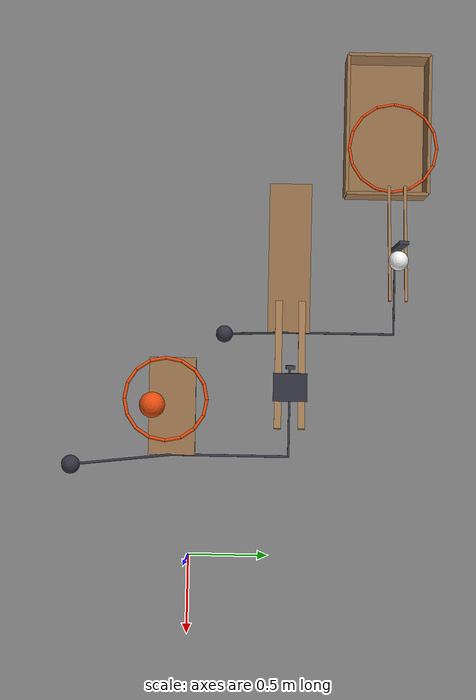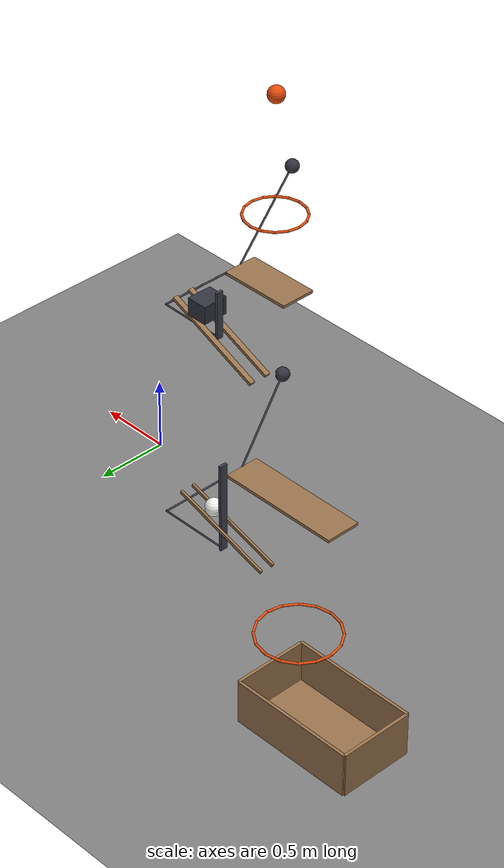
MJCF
<mujoco model="two_falling_balls_and_two_trapdoors">
  <compiler angle="radian"/>
  <option timestep="0.002"/>
  <worldbody>
    <geom name="floor" type="plane" size="8 8 0.1" friction="0.8 0.01 0.004"/>
    <body name="hoop1">
      <geom name="hoop1_00" type="capsule" size="0.008" fromto="-0.852 0 2.25 -0.867072 0.0757713 2.25" rgba="0.9 0.3 0.05 1"/>
      <geom name="hoop1_01" type="capsule" size="0.008" fromto="-0.867072 0.0757713 2.25 -0.909993 0.140007 2.25" rgba="0.9 0.3 0.05 1"/>
      <geom name="hoop1_02" type="capsule" size="0.008" fromto="-0.909993 0.140007 2.25 -0.974229 0.182928 2.25" rgba="0.9 0.3 0.05 1"/>
      <geom name="hoop1_03" type="capsule" size="0.008" fromto="-0.974229 0.182928 2.25 -1.05 0.198 2.25" rgba="0.9 0.3 0.05 1"/>
      <geom name="hoop1_04" type="capsule" size="0.008" fromto="-1.05 0.198 2.25 -1.12577 0.182928 2.25" rgba="0.9 0.3 0.05 1"/>
      <geom name="hoop1_05" type="capsule" size="0.008" fromto="-1.12577 0.182928 2.25 -1.19001 0.140007 2.25" rgba="0.9 0.3 0.05 1"/>
      <geom name="hoop1_06" type="capsule" size="0.008" fromto="-1.19001 0.140007 2.25 -1.23293 0.0757713 2.25" rgba="0.9 0.3 0.05 1"/>
      <geom name="hoop1_07" type="capsule" size="0.008" fromto="-1.23293 0.0757713 2.25 -1.248 2.4248e-17 2.25" rgba="0.9 0.3 0.05 1"/>
      <geom name="hoop1_08" type="capsule" size="0.008" fromto="-1.248 2.4248e-17 2.25 -1.23293 -0.0757713 2.25" rgba="0.9 0.3 0.05 1"/>
      <geom name="hoop1_09" type="capsule" size="0.008" fromto="-1.23293 -0.0757713 2.25 -1.19001 -0.140007 2.25" rgba="0.9 0.3 0.05 1"/>
      <geom name="hoop1_10" type="capsule" size="0.008" fromto="-1.19001 -0.140007 2.25 -1.12577 -0.182928 2.25" rgba="0.9 0.3 0.05 1"/>
      <geom name="hoop1_11" type="capsule" size="0.008" fromto="-1.12577 -0.182928 2.25 -1.05 -0.198 2.25" rgba="0.9 0.3 0.05 1"/>
      <geom name="hoop1_12" type="capsule" size="0.008" fromto="-1.05 -0.198 2.25 -0.974229 -0.182928 2.25" rgba="0.9 0.3 0.05 1"/>
      <geom name="hoop1_13" type="capsule" size="0.008" fromto="-0.974229 -0.182928 2.25 -0.909993 -0.140007 2.25" rgba="0.9 0.3 0.05 1"/>
      <geom name="hoop1_14" type="capsule" size="0.008" fromto="-0.909993 -0.140007 2.25 -0.867072 -0.0757713 2.25" rgba="0.9 0.3 0.05 1"/>
      <geom name="hoop1_15" type="capsule" size="0.008" fromto="-0.867072 -0.0757713 2.25 -0.852 -4.8496e-17 2.25" rgba="0.9 0.3 0.05 1"/>
    </body>
    <body name="ball1" pos="-1.05 0 3.05">
      <freejoint/>
      <geom name="ball1" type="sphere" pos="0 0 0" size="0.055" mass="1" condim="6" friction="0.5 0.01 0.003" solref="0.01 1" rgba="0.9 0.3 0.05 1"/>
    </body>
    <body name="flap1" pos="-0.75 0 1.75">
      <joint name="flap1_hinge" type="hinge" pos="0 0 0" axis="0 1 0" limited="true" range="-0.698132 0" stiffness="3" springref="0.261799" damping="0.05" armature="0.002"/>
      <geom name="flap1" type="box" pos="-0.25 0 0" size="0.25 0.12 0.01" mass="0.18" friction="0.5 0.005 0.0001" solref="0.01 1" rgba="0.6 0.45 0.3 1"/>
      <geom name="flap1 ballast" type="sphere" pos="0.02 -0.45 0.5" size="0.045" mass="1.1" solref="0.01 1" rgba="0.2 0.2 0.25 1"/>
      <geom name="flap1 mast" type="capsule" size="0.006" fromto="0 0 0 0.02 -0.45 0.5" mass="0.015" rgba="0.25 0.25 0.3 1"/>
      <geom name="flap1 shaft" type="capsule" size="0.006" fromto="0 0 0 0 0.6 0" mass="0.01" rgba="0.25 0.25 0.3 1"/>
      <geom name="gate1" type="box" pos="-0.46 0.6 0.15" size="0.009 0.0225 0.16" mass="0.05" friction="0.05 0.005 0.0001" solref="0.01 1" rgba="0.25 0.25 0.3 1"/>
      <geom name="flap1 gate arm" type="capsule" size="0.005" fromto="0 0.6 0 -0.46 0.6 -0.01" mass="0.01" rgba="0.25 0.25 0.3 1"/>
    </body>
    <body name="block rail left">
      <geom name="block rail left" type="box" pos="-1.225 0.66 1.76" size="0.353871 0.0175 0.01" euler="0 2.73485 0" friction="0.2 0.005 0.0001" solref="0.01 1" rgba="0.6 0.45 0.3 1"/>
    </body>
    <body name="block rail right">
      <geom name="block rail right" type="box" pos="-1.225 0.54 1.76" size="0.353871 0.0175 0.01" euler="0 2.73485 0" friction="0.2 0.005 0.0001" solref="0.01 1" rgba="0.6 0.45 0.3 1"/>
    </body>
    <body name="block" pos="-1.11 0.6 1.916">
      <freejoint/>
      <geom name="block" type="box" pos="0 0 0" size="0.07 0.085 0.06" mass="0.35" friction="0.25 0.01 0.002" solref="0.01 1" rgba="0.2 0.2 0.25 1"/>
    </body>
    <body name="flap2" pos="-1.4 0.6 0.9">
      <joint name="flap2_hinge" type="hinge" pos="0 0 0" axis="0 1 0" limited="true" range="-0.837758 0" stiffness="3.6" springref="0.261799" damping="0.05" armature="0.002"/>
      <geom name="flap2" type="box" pos="-0.425 0 0" size="0.425 0.12 0.01" mass="0.2" friction="0.5 0.005 0.0001" solref="0.01 1" rgba="0.6 0.45 0.3 1"/>
      <geom name="flap2 ballast" type="sphere" pos="0.02 -0.35 0.5" size="0.045" mass="1.3" solref="0.01 1" rgba="0.2 0.2 0.25 1"/>
      <geom name="flap2 mast" type="capsule" size="0.006" fromto="0 0 0 0.02 -0.35 0.5" mass="0.015" rgba="0.25 0.25 0.3 1"/>
      <geom name="flap2 shaft" type="capsule" size="0.006" fromto="0 0 0 0 0.6 0" mass="0.01" rgba="0.25 0.25 0.3 1"/>
      <geom name="gate2" type="box" pos="-0.48 0.6 0.3" size="0.009 0.025 0.3" mass="0.04" friction="0.03 0.005 0.0001" solref="0.01 1" rgba="0.25 0.25 0.3 1"/>
      <geom name="flap2 gate arm" type="capsule" size="0.005" fromto="0 0.6 0 -0.48 0.6 0" mass="0.01" rgba="0.25 0.25 0.3 1"/>
    </body>
    <body name="ball rail left">
      <geom name="ball rail left" type="box" pos="-1.91 1.245 1.0675" size="0.345552 0.008 0.01" euler="0 2.84043 0" friction="0.2 0.005 0.0001" solref="0.01 1" rgba="0.6 0.45 0.3 1"/>
    </body>
    <body name="ball rail right">
      <geom name="ball rail right" type="box" pos="-1.91 1.155 1.0675" size="0.345552 0.008 0.01" euler="0 2.84043 0" friction="0.2 0.005 0.0001" solref="0.01 1" rgba="0.6 0.45 0.3 1"/>
    </body>
    <body name="ball2" pos="-1.805 1.2 1.16">
      <freejoint/>
      <geom name="ball2" type="sphere" pos="0 0 0" size="0.055" mass="0.08" condim="6" friction="0.35 0.005 0.001" solref="0.01 1" rgba="0.95 0.95 0.95 1"/>
    </body>
    <body name="hoop2">
      <geom name="hoop2_00" type="capsule" size="0.008" fromto="-2.242 1.2 0.65 -2.26164 1.29873 0.65" rgba="0.9 0.3 0.05 1"/>
      <geom name="hoop2_01" type="capsule" size="0.008" fromto="-2.26164 1.29873 0.65 -2.31757 1.38243 0.65" rgba="0.9 0.3 0.05 1"/>
      <geom name="hoop2_02" type="capsule" size="0.008" fromto="-2.31757 1.38243 0.65 -2.40127 1.43836 0.65" rgba="0.9 0.3 0.05 1"/>
      <geom name="hoop2_03" type="capsule" size="0.008" fromto="-2.40127 1.43836 0.65 -2.5 1.458 0.65" rgba="0.9 0.3 0.05 1"/>
      <geom name="hoop2_04" type="capsule" size="0.008" fromto="-2.5 1.458 0.65 -2.59873 1.43836 0.65" rgba="0.9 0.3 0.05 1"/>
      <geom name="hoop2_05" type="capsule" size="0.008" fromto="-2.59873 1.43836 0.65 -2.68243 1.38243 0.65" rgba="0.9 0.3 0.05 1"/>
      <geom name="hoop2_06" type="capsule" size="0.008" fromto="-2.68243 1.38243 0.65 -2.73836 1.29873 0.65" rgba="0.9 0.3 0.05 1"/>
      <geom name="hoop2_07" type="capsule" size="0.008" fromto="-2.73836 1.29873 0.65 -2.758 1.2 0.65" rgba="0.9 0.3 0.05 1"/>
      <geom name="hoop2_08" type="capsule" size="0.008" fromto="-2.758 1.2 0.65 -2.73836 1.10127 0.65" rgba="0.9 0.3 0.05 1"/>
      <geom name="hoop2_09" type="capsule" size="0.008" fromto="-2.73836 1.10127 0.65 -2.68243 1.01757 0.65" rgba="0.9 0.3 0.05 1"/>
      <geom name="hoop2_10" type="capsule" size="0.008" fromto="-2.68243 1.01757 0.65 -2.59873 0.961639 0.65" rgba="0.9 0.3 0.05 1"/>
      <geom name="hoop2_11" type="capsule" size="0.008" fromto="-2.59873 0.961639 0.65 -2.5 0.942 0.65" rgba="0.9 0.3 0.05 1"/>
      <geom name="hoop2_12" type="capsule" size="0.008" fromto="-2.5 0.942 0.65 -2.40127 0.961639 0.65" rgba="0.9 0.3 0.05 1"/>
      <geom name="hoop2_13" type="capsule" size="0.008" fromto="-2.40127 0.961639 0.65 -2.31757 1.01757 0.65" rgba="0.9 0.3 0.05 1"/>
      <geom name="hoop2_14" type="capsule" size="0.008" fromto="-2.31757 1.01757 0.65 -2.26164 1.10127 0.65" rgba="0.9 0.3 0.05 1"/>
      <geom name="hoop2_15" type="capsule" size="0.008" fromto="-2.26164 1.10127 0.65 -2.242 1.2 0.65" rgba="0.9 0.3 0.05 1"/>
    </body>
    <body name="cup">
      <geom name="cup_base" type="box" pos="-2.7 1.2 0.01" size="0.425 0.25 0.01" friction="0.9 0.02 0.015" solref="0.01 1" rgba="0.6 0.45 0.3 1"/>
      <geom name="cup_near_wall" type="box" pos="-3.125 1.2 0.15" size="0.01 0.25 0.15" friction="0.9 0.02 0.015" solref="0.01 1" rgba="0.6 0.45 0.3 1"/>
      <geom name="cup_far_wall" type="box" pos="-2.275 1.2 0.15" size="0.01 0.25 0.15" friction="0.9 0.02 0.015" solref="0.01 1" rgba="0.6 0.45 0.3 1"/>
      <geom name="cup_left_wall" type="box" pos="-2.7 1.45 0.15" size="0.425 0.01 0.15" friction="0.9 0.02 0.015" solref="0.01 1" rgba="0.6 0.45 0.3 1"/>
      <geom name="cup_right_wall" type="box" pos="-2.7 0.95 0.15" size="0.425 0.01 0.15" friction="0.9 0.02 0.015" solref="0.01 1" rgba="0.6 0.45 0.3 1"/>
    </body>
  </worldbody>
  <keyframe>
    <key name="start" qpos="-1.05 0 3.05 1 0 0 0 0 -1.11 0.6 1.916 1 0 0 0 0 -1.805 1.2 1.16 1 0 0 0" qvel="0 0 0 0 0 0 0 0 0 0 0 0 0 0 0 0 0 0 0 0"/>
  </keyframe>
</mujoco>
